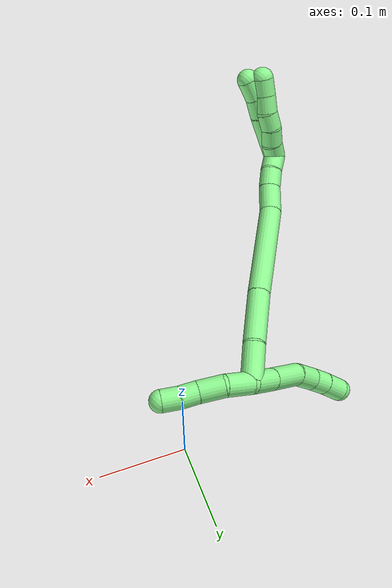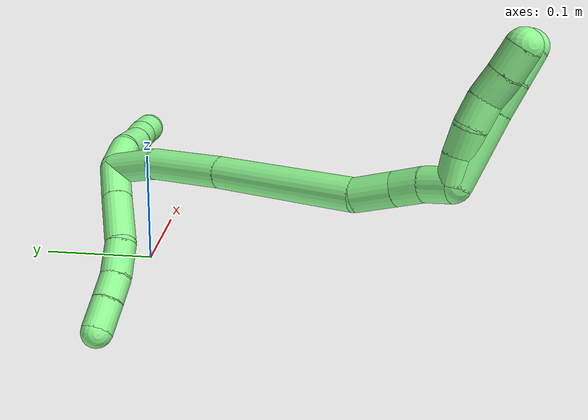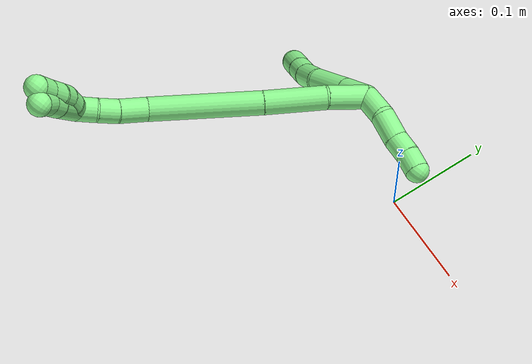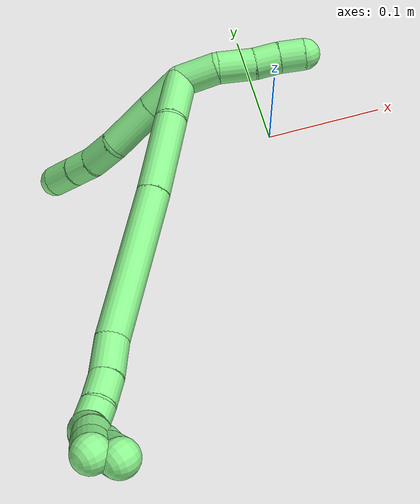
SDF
<sdf version="1.7">
 <world name="default">
  <model name="photoneo_s_sensor">
   <static>1</static>
   <pose>0 0 2 1.57079 1.57079 3.14159</pose>
   <link name="link">
    <inertial><mass>0.1</mass></inertial>
    <sensor name="sensor" type="depth">
     <update_rate>30</update_rate>
     <camera>
      <horizontal_fov>1.22</horizontal_fov>
      <image><width>1920</width><height>1200</height><format>B8G8R8</format></image>
      <clip><near>0.1</near><far>4</far></clip>
      <depth_camera><output>points</output></depth_camera>
     </camera>
     <plugin name="camera_plugin" filename="libgazebo_ros_depth_camera.so">
      <baseline>0.2</baseline>
      <alwaysOn>1</alwaysOn>
      <updateRate>0.0</updateRate>
      <cameraName>camera_ir</cameraName>
      <imageTopicName>/camera/color/image_raw</imageTopicName>
      <cameraInfoTopicName>/camera/color/camera_info</cameraInfoTopicName>
      <depthImageTopicName>/camera/depth/image_raw</depthImageTopicName>
      <depthImageCameraInfoTopicName>/camera/depth/camera_info</depthImageCameraInfoTopicName>
      <pointCloudTopicName>/camera/depth/points</pointCloudTopicName>
      <frameName>fr_optical</frameName>
      <pointCloudCutoff>0.1</pointCloudCutoff>
      <pointCloudCutoffMax>2.0</pointCloudCutoffMax>
      <distortionK1>0</distortionK1>
      <distortionK2>0</distortionK2>
      <distortionK3>0</distortionK3>
      <distortionT1>0</distortionT1>
      <distortionT2>0</distortionT2>
      <CxPrime>0</CxPrime>
      <Cx>0</Cx>
      <Cy>0</Cy>
      <focalLength>0</focalLength>
      <hackBaseline>0</hackBaseline>
     </plugin>
    </sensor>
   </link>
  </model>
  <model name="bin">
   <static>1</static>
   <link name="bottom">
    <collision name="collision-bottom">
     <pose>0 0 -0.01 0 -0 0</pose>
     <geometry><box><size>0.8 0.6 0.02</size></box></geometry>
     <surface>
      <friction><ode><mu>100</mu><mu2>100</mu2></ode></friction>
      <contact><collide_bitmask>65535</collide_bitmask></contact>
     </surface>
    </collision>
   </link>
   <link name="west_wall">
    <collision name="collision-west_wall">
     <pose>-0.41 0 0.1 0 -0 0</pose>
     <geometry><box><size>0.02 0.6 0.2</size></box></geometry>
     <surface>
      <friction><ode><mu>100</mu><mu2>100</mu2></ode></friction>
      <contact><collide_bitmask>65535</collide_bitmask></contact>
     </surface>
    </collision>
   </link>
   <link name="east_wall">
    <collision name="collision-east_wall">
     <pose>0.41 0 0.1 0 -0 0</pose>
     <geometry><box><size>0.02 0.6 0.2</size></box></geometry>
     <surface>
      <friction><ode><mu>100</mu><mu2>100</mu2></ode></friction>
      <contact><collide_bitmask>65535</collide_bitmask></contact>
     </surface>
    </collision>
   </link>
   <link name="south_wall">
    <collision name="collision-south_wall">
     <pose>0 -0.31 0.1 0 -0 0</pose>
     <geometry><box><size>0.8 0.02 0.2</size></box></geometry>
     <surface>
      <friction><ode><mu>100</mu><mu2>100</mu2></ode></friction>
      <contact><collide_bitmask>65535</collide_bitmask></contact>
     </surface>
    </collision>
   </link>
   <link name="north_wall">
    <collision name="collision-north_wall">
     <pose>0 0.31 0.1 0 -0 0</pose>
     <geometry><box><size>0.8 0.02 0.2</size></box></geometry>
     <surface>
      <friction><ode><mu>100</mu><mu2>100</mu2></ode></friction>
      <contact><collide_bitmask>65535</collide_bitmask></contact>
     </surface>
    </collision>
   </link>
  </model>
  <model name="13">
   <static>0</static>
   <link name="13">
    <collision name="collision-cylinder-e_1_2_8">
     <pose>-0.010805 0.007262 0.009507 -0.652314 -0.734559 0.258809</pose>
     <geometry><cylinder><radius>0.0125</radius><length>0.032241</length></cylinder></geometry>
     <surface>
      <friction><ode><mu>1.16</mu><mu2>1.16</mu2><slip1>0</slip1><slip2>0</slip2></ode></friction>
      <contact><ode><kp>1e+06</kp><kd>1</kd><max_vel>0</max_vel><min_depth>0.001</min_depth></ode></contact>
     </surface>
    </collision>
    <visual name="visual-cylinder-e_1_2_8">
     <pose>-0.010805 0.007262 0.009507 -0.652314 -0.734559 0.258809</pose>
     <geometry><cylinder><radius>0.0125</radius><length>0.032241</length></cylinder></geometry>
     <material><ambient>0.564706 0.984314 0.572549 1</ambient></material>
    </visual>
    <collision name="collision-cylinder-e_2_8_9">
     <pose>-0.036164 0.023961 0.032081 -0.625496 -0.734469 0.247512</pose>
     <geometry><cylinder><radius>0.0125</radius><length>0.043435</length></cylinder></geometry>
     <surface>
      <friction><ode><mu>1.16</mu><mu2>1.16</mu2><slip1>0</slip1><slip2>0</slip2></ode></friction>
      <contact><ode><kp>1e+06</kp><kd>1</kd><max_vel>0</max_vel><min_depth>0.001</min_depth></ode></contact>
     </surface>
    </collision>
    <visual name="visual-cylinder-e_2_8_9">
     <pose>-0.036164 0.023961 0.032081 -0.625496 -0.734469 0.247512</pose>
     <geometry><cylinder><radius>0.0125</radius><length>0.043435</length></cylinder></geometry>
     <material><ambient>0.564706 0.984314 0.572549 1</ambient></material>
    </visual>
    <collision name="collision-cylinder-e_3_9_10">
     <pose>-0.060214 0.042338 0.050449 -1.03548 -0.74026 0.435007</pose>
     <geometry><cylinder><radius>0.0125</radius><length>0.028153</length></cylinder></geometry>
     <surface>
      <friction><ode><mu>1.16</mu><mu2>1.16</mu2><slip1>0</slip1><slip2>0</slip2></ode></friction>
      <contact><ode><kp>1e+06</kp><kd>1</kd><max_vel>0</max_vel><min_depth>0.001</min_depth></ode></contact>
     </surface>
    </collision>
    <visual name="visual-cylinder-e_3_9_10">
     <pose>-0.060214 0.042338 0.050449 -1.03548 -0.74026 0.435007</pose>
     <geometry><cylinder><radius>0.0125</radius><length>0.028153</length></cylinder></geometry>
     <material><ambient>0.564706 0.984314 0.572549 1</ambient></material>
    </visual>
    <collision name="collision-cylinder-e_4_10_11">
     <pose>-0.075389 0.059081 0.059654 -1.10695 -0.577092 0.362786</pose>
     <geometry><cylinder><radius>0.0125</radius><length>0.020825</length></cylinder></geometry>
     <surface>
      <friction><ode><mu>1.16</mu><mu2>1.16</mu2><slip1>0</slip1><slip2>0</slip2></ode></friction>
      <contact><ode><kp>1e+06</kp><kd>1</kd><max_vel>0</max_vel><min_depth>0.001</min_depth></ode></contact>
     </surface>
    </collision>
    <visual name="visual-cylinder-e_4_10_11">
     <pose>-0.075389 0.059081 0.059654 -1.10695 -0.577092 0.362786</pose>
     <geometry><cylinder><radius>0.0125</radius><length>0.020825</length></cylinder></geometry>
     <material><ambient>0.564706 0.984314 0.572549 1</ambient></material>
    </visual>
    <collision name="collision-cylinder-e_5_11_6">
     <pose>-0.088134 0.076596 0.067609 -1.17561 -0.591245 0.400448</pose>
     <geometry><cylinder><radius>0.0125</radius><length>0.025346</length></cylinder></geometry>
     <surface>
      <friction><ode><mu>1.16</mu><mu2>1.16</mu2><slip1>0</slip1><slip2>0</slip2></ode></friction>
      <contact><ode><kp>1e+06</kp><kd>1</kd><max_vel>0</max_vel><min_depth>0.001</min_depth></ode></contact>
     </surface>
    </collision>
    <visual name="visual-cylinder-e_5_11_6">
     <pose>-0.088134 0.076596 0.067609 -1.17561 -0.591245 0.400448</pose>
     <geometry><cylinder><radius>0.0125</radius><length>0.025346</length></cylinder></geometry>
     <material><ambient>0.564706 0.984314 0.572549 1</ambient></material>
    </visual>
    <collision name="collision-cylinder-e_1_2_12">
     <pose>0.004618 -0.009606 -0.011044 2.42572 0.30559 0.781106</pose>
     <geometry><cylinder><radius>0.0125</radius><length>0.030697</length></cylinder></geometry>
     <surface>
      <friction><ode><mu>1.16</mu><mu2>1.16</mu2><slip1>0</slip1><slip2>0</slip2></ode></friction>
      <contact><ode><kp>1e+06</kp><kd>1</kd><max_vel>0</max_vel><min_depth>0.001</min_depth></ode></contact>
     </surface>
    </collision>
    <visual name="visual-cylinder-e_1_2_12">
     <pose>0.004618 -0.009606 -0.011044 2.42572 0.30559 0.781106</pose>
     <geometry><cylinder><radius>0.0125</radius><length>0.030697</length></cylinder></geometry>
     <material><ambient>0.564706 0.984314 0.572549 1</ambient></material>
    </visual>
    <collision name="collision-cylinder-e_2_12_13">
     <pose>0.009104 -0.027408 -0.0341 2.54281 -0.009037 -0.029276</pose>
     <geometry><cylinder><radius>0.0125</radius><length>0.029083</length></cylinder></geometry>
     <surface>
      <friction><ode><mu>1.16</mu><mu2>1.16</mu2><slip1>0</slip1><slip2>0</slip2></ode></friction>
      <contact><ode><kp>1e+06</kp><kd>1</kd><max_vel>0</max_vel><min_depth>0.001</min_depth></ode></contact>
     </surface>
    </collision>
    <visual name="visual-cylinder-e_2_12_13">
     <pose>0.009104 -0.027408 -0.0341 2.54281 -0.009037 -0.029276</pose>
     <geometry><cylinder><radius>0.0125</radius><length>0.029083</length></cylinder></geometry>
     <material><ambient>0.564706 0.984314 0.572549 1</ambient></material>
    </visual>
    <collision name="collision-cylinder-e_3_13_14">
     <pose>0.010211 -0.040762 -0.054643 2.59785 0.123624 0.436931</pose>
     <geometry><cylinder><radius>0.0125</radius><length>0.020094</length></cylinder></geometry>
     <surface>
      <friction><ode><mu>1.16</mu><mu2>1.16</mu2><slip1>0</slip1><slip2>0</slip2></ode></friction>
      <contact><ode><kp>1e+06</kp><kd>1</kd><max_vel>0</max_vel><min_depth>0.001</min_depth></ode></contact>
     </surface>
    </collision>
    <visual name="visual-cylinder-e_3_13_14">
     <pose>0.010211 -0.040762 -0.054643 2.59785 0.123624 0.436931</pose>
     <geometry><cylinder><radius>0.0125</radius><length>0.020094</length></cylinder></geometry>
     <material><ambient>0.564706 0.984314 0.572549 1</ambient></material>
    </visual>
    <collision name="collision-cylinder-e_4_14_5">
     <pose>0.011959 -0.051997 -0.071181 2.4923 0.050556 0.149966</pose>
     <geometry><cylinder><radius>0.0125</radius><length>0.020126</length></cylinder></geometry>
     <surface>
      <friction><ode><mu>1.16</mu><mu2>1.16</mu2><slip1>0</slip1><slip2>0</slip2></ode></friction>
      <contact><ode><kp>1e+06</kp><kd>1</kd><max_vel>0</max_vel><min_depth>0.001</min_depth></ode></contact>
     </surface>
    </collision>
    <visual name="visual-cylinder-e_4_14_5">
     <pose>0.011959 -0.051997 -0.071181 2.4923 0.050556 0.149966</pose>
     <geometry><cylinder><radius>0.0125</radius><length>0.020126</length></cylinder></geometry>
     <material><ambient>0.564706 0.984314 0.572549 1</ambient></material>
    </visual>
    <collision name="collision-cylinder-e_1_2_15">
     <pose>-0.005922 -0.012451 0.016781 0.638352 -0.276162 -0.091785</pose>
     <geometry><cylinder><radius>0.0125</radius><length>0.043437</length></cylinder></geometry>
     <surface>
      <friction><ode><mu>1.16</mu><mu2>1.16</mu2><slip1>0</slip1><slip2>0</slip2></ode></friction>
      <contact><ode><kp>1e+06</kp><kd>1</kd><max_vel>0</max_vel><min_depth>0.001</min_depth></ode></contact>
     </surface>
    </collision>
    <visual name="visual-cylinder-e_1_2_15">
     <pose>-0.005922 -0.012451 0.016781 0.638352 -0.276162 -0.091785</pose>
     <geometry><cylinder><radius>0.0125</radius><length>0.043437</length></cylinder></geometry>
     <material><ambient>0.564706 0.984314 0.572549 1</ambient></material>
    </visual>
    <collision name="collision-cylinder-e_2_15_16">
     <pose>-0.026278 -0.040791 0.057618 0.58373 -0.464182 -0.141783</pose>
     <geometry><cylinder><radius>0.0125</radius><length>0.064482</length></cylinder></geometry>
     <surface>
      <friction><ode><mu>1.16</mu><mu2>1.16</mu2><slip1>0</slip1><slip2>0</slip2></ode></friction>
      <contact><ode><kp>1e+06</kp><kd>1</kd><max_vel>0</max_vel><min_depth>0.001</min_depth></ode></contact>
     </surface>
    </collision>
    <visual name="visual-cylinder-e_2_15_16">
     <pose>-0.026278 -0.040791 0.057618 0.58373 -0.464182 -0.141783</pose>
     <geometry><cylinder><radius>0.0125</radius><length>0.064482</length></cylinder></geometry>
     <material><ambient>0.564706 0.984314 0.572549 1</ambient></material>
    </visual>
    <collision name="collision-cylinder-e_3_16_17">
     <pose>-0.067587 -0.083508 0.126548 0.538818 -0.474814 -0.133428</pose>
     <geometry><cylinder><radius>0.0125</radius><length>0.117571</length></cylinder></geometry>
     <surface>
      <friction><ode><mu>1.16</mu><mu2>1.16</mu2><slip1>0</slip1><slip2>0</slip2></ode></friction>
      <contact><ode><kp>1e+06</kp><kd>1</kd><max_vel>0</max_vel><min_depth>0.001</min_depth></ode></contact>
     </surface>
    </collision>
    <visual name="visual-cylinder-e_3_16_17">
     <pose>-0.067587 -0.083508 0.126548 0.538818 -0.474814 -0.133428</pose>
     <geometry><cylinder><radius>0.0125</radius><length>0.117571</length></cylinder></geometry>
     <material><ambient>0.564706 0.984314 0.572549 1</ambient></material>
    </visual>
    <collision name="collision-cylinder-e_4_17_18">
     <pose>-0.098129 -0.120378 0.182579 0.732959 -0.239581 -0.092332</pose>
     <geometry><cylinder><radius>0.0125</radius><length>0.030903</length></cylinder></geometry>
     <surface>
      <friction><ode><mu>1.16</mu><mu2>1.16</mu2><slip1>0</slip1><slip2>0</slip2></ode></friction>
      <contact><ode><kp>1e+06</kp><kd>1</kd><max_vel>0</max_vel><min_depth>0.001</min_depth></ode></contact>
     </surface>
    </collision>
    <visual name="visual-cylinder-e_4_17_18">
     <pose>-0.098129 -0.120378 0.182579 0.732959 -0.239581 -0.092332</pose>
     <geometry><cylinder><radius>0.0125</radius><length>0.030903</length></cylinder></geometry>
     <material><ambient>0.564706 0.984314 0.572549 1</ambient></material>
    </visual>
    <collision name="collision-cylinder-e_5_18_19">
     <pose>-0.103896 -0.13659 0.202428 0.617123 -0.194554 -0.062189</pose>
     <geometry><cylinder><radius>0.0125</radius><length>0.02173</length></cylinder></geometry>
     <surface>
      <friction><ode><mu>1.16</mu><mu2>1.16</mu2><slip1>0</slip1><slip2>0</slip2></ode></friction>
      <contact><ode><kp>1e+06</kp><kd>1</kd><max_vel>0</max_vel><min_depth>0.001</min_depth></ode></contact>
     </surface>
    </collision>
    <visual name="visual-cylinder-e_5_18_19">
     <pose>-0.103896 -0.13659 0.202428 0.617123 -0.194554 -0.062189</pose>
     <geometry><cylinder><radius>0.0125</radius><length>0.02173</length></cylinder></geometry>
     <material><ambient>0.564706 0.984314 0.572549 1</ambient></material>
    </visual>
    <collision name="collision-cylinder-e_6_19_1">
     <pose>-0.109474 -0.147658 0.220262 0.492012 -0.323551 -0.081911</pose>
     <geometry><cylinder><radius>0.0125</radius><length>0.021876</length></cylinder></geometry>
     <surface>
      <friction><ode><mu>1.16</mu><mu2>1.16</mu2><slip1>0</slip1><slip2>0</slip2></ode></friction>
      <contact><ode><kp>1e+06</kp><kd>1</kd><max_vel>0</max_vel><min_depth>0.001</min_depth></ode></contact>
     </surface>
    </collision>
    <visual name="visual-cylinder-e_6_19_1">
     <pose>-0.109474 -0.147658 0.220262 0.492012 -0.323551 -0.081911</pose>
     <geometry><cylinder><radius>0.0125</radius><length>0.021876</length></cylinder></geometry>
     <material><ambient>0.564706 0.984314 0.572549 1</ambient></material>
    </visual>
    <collision name="collision-cylinder-e_1_1_20">
     <pose>-0.105402 -0.158583 0.231991 1.16516 0.855589 0.583667</pose>
     <geometry><cylinder><radius>0.0125</radius><length>0.02</length></cylinder></geometry>
     <surface>
      <friction><ode><mu>1.16</mu><mu2>1.16</mu2><slip1>0</slip1><slip2>0</slip2></ode></friction>
      <contact><ode><kp>1e+06</kp><kd>1</kd><max_vel>0</max_vel><min_depth>0.001</min_depth></ode></contact>
     </surface>
    </collision>
    <visual name="visual-cylinder-e_1_1_20">
     <pose>-0.105402 -0.158583 0.231991 1.16516 0.855589 0.583667</pose>
     <geometry><cylinder><radius>0.0125</radius><length>0.02</length></cylinder></geometry>
     <material><ambient>0.564706 0.984314 0.572549 1</ambient></material>
    </visual>
    <collision name="collision-cylinder-e_2_20_21">
     <pose>-0.090974 -0.170397 0.238957 0.923144 0.758535 0.391422</pose>
     <geometry><cylinder><radius>0.0125</radius><length>0.02</length></cylinder></geometry>
     <surface>
      <friction><ode><mu>1.16</mu><mu2>1.16</mu2><slip1>0</slip1><slip2>0</slip2></ode></friction>
      <contact><ode><kp>1e+06</kp><kd>1</kd><max_vel>0</max_vel><min_depth>0.001</min_depth></ode></contact>
     </surface>
    </collision>
    <visual name="visual-cylinder-e_2_20_21">
     <pose>-0.090974 -0.170397 0.238957 0.923144 0.758535 0.391422</pose>
     <geometry><cylinder><radius>0.0125</radius><length>0.02</length></cylinder></geometry>
     <material><ambient>0.564706 0.984314 0.572549 1</ambient></material>
    </visual>
    <collision name="collision-cylinder-e_3_21_22">
     <pose>-0.078326 -0.183605 0.246752 1.13935 0.614945 0.401305</pose>
     <geometry><cylinder><radius>0.0125</radius><length>0.02</length></cylinder></geometry>
     <surface>
      <friction><ode><mu>1.16</mu><mu2>1.16</mu2><slip1>0</slip1><slip2>0</slip2></ode></friction>
      <contact><ode><kp>1e+06</kp><kd>1</kd><max_vel>0</max_vel><min_depth>0.001</min_depth></ode></contact>
     </surface>
    </collision>
    <visual name="visual-cylinder-e_3_21_22">
     <pose>-0.078326 -0.183605 0.246752 1.13935 0.614945 0.401305</pose>
     <geometry><cylinder><radius>0.0125</radius><length>0.02</length></cylinder></geometry>
     <material><ambient>0.564706 0.984314 0.572549 1</ambient></material>
    </visual>
    <collision name="collision-cylinder-e_4_22_23">
     <pose>-0.06806 -0.198141 0.255566 0.921873 0.466398 0.234828</pose>
     <geometry><cylinder><radius>0.0125</radius><length>0.02</length></cylinder></geometry>
     <surface>
      <friction><ode><mu>1.16</mu><mu2>1.16</mu2><slip1>0</slip1><slip2>0</slip2></ode></friction>
      <contact><ode><kp>1e+06</kp><kd>1</kd><max_vel>0</max_vel><min_depth>0.001</min_depth></ode></contact>
     </surface>
    </collision>
    <visual name="visual-cylinder-e_4_22_23">
     <pose>-0.06806 -0.198141 0.255566 0.921873 0.466398 0.234828</pose>
     <geometry><cylinder><radius>0.0125</radius><length>0.02</length></cylinder></geometry>
     <material><ambient>0.564706 0.984314 0.572549 1</ambient></material>
    </visual>
    <collision name="collision-cylinder-e_5_23_4">
     <pose>-0.058496 -0.212352 0.26586 0.966699 0.531427 0.283769</pose>
     <geometry><cylinder><radius>0.0125</radius><length>0.02</length></cylinder></geometry>
     <surface>
      <friction><ode><mu>1.16</mu><mu2>1.16</mu2><slip1>0</slip1><slip2>0</slip2></ode></friction>
      <contact><ode><kp>1e+06</kp><kd>1</kd><max_vel>0</max_vel><min_depth>0.001</min_depth></ode></contact>
     </surface>
    </collision>
    <visual name="visual-cylinder-e_5_23_4">
     <pose>-0.058496 -0.212352 0.26586 0.966699 0.531427 0.283769</pose>
     <geometry><cylinder><radius>0.0125</radius><length>0.02</length></cylinder></geometry>
     <material><ambient>0.564706 0.984314 0.572549 1</ambient></material>
    </visual>
    <collision name="collision-cylinder-e_1_1_24">
     <pose>-0.097527 -0.173477 0.237458 1.20323 0.602688 0.420443</pose>
     <geometry><cylinder><radius>0.0125</radius><length>0.054423</length></cylinder></geometry>
     <surface>
      <friction><ode><mu>1.16</mu><mu2>1.16</mu2><slip1>0</slip1><slip2>0</slip2></ode></friction>
      <contact><ode><kp>1e+06</kp><kd>1</kd><max_vel>0</max_vel><min_depth>0.001</min_depth></ode></contact>
     </surface>
    </collision>
    <visual name="visual-cylinder-e_1_1_24">
     <pose>-0.097527 -0.173477 0.237458 1.20323 0.602688 0.420443</pose>
     <geometry><cylinder><radius>0.0125</radius><length>0.054423</length></cylinder></geometry>
     <material><ambient>0.564706 0.984314 0.572549 1</ambient></material>
    </visual>
    <collision name="collision-cylinder-e_2_24_25">
     <pose>-0.075984 -0.202819 0.249596 1.1195 0.578922 0.368994</pose>
     <geometry><cylinder><radius>0.0125</radius><length>0.022363</length></cylinder></geometry>
     <surface>
      <friction><ode><mu>1.16</mu><mu2>1.16</mu2><slip1>0</slip1><slip2>0</slip2></ode></friction>
      <contact><ode><kp>1e+06</kp><kd>1</kd><max_vel>0</max_vel><min_depth>0.001</min_depth></ode></contact>
     </surface>
    </collision>
    <visual name="visual-cylinder-e_2_24_25">
     <pose>-0.075984 -0.202819 0.249596 1.1195 0.578922 0.368994</pose>
     <geometry><cylinder><radius>0.0125</radius><length>0.022363</length></cylinder></geometry>
     <material><ambient>0.564706 0.984314 0.572549 1</ambient></material>
    </visual>
    <collision name="collision-cylinder-e_3_25_3">
     <pose>-0.063893 -0.220838 0.256315 1.30262 0.540589 0.416294</pose>
     <geometry><cylinder><radius>0.0125</radius><length>0.023214</length></cylinder></geometry>
     <surface>
      <friction><ode><mu>1.16</mu><mu2>1.16</mu2><slip1>0</slip1><slip2>0</slip2></ode></friction>
      <contact><ode><kp>1e+06</kp><kd>1</kd><max_vel>0</max_vel><min_depth>0.001</min_depth></ode></contact>
     </surface>
    </collision>
    <visual name="visual-cylinder-e_3_25_3">
     <pose>-0.063893 -0.220838 0.256315 1.30262 0.540589 0.416294</pose>
     <geometry><cylinder><radius>0.0125</radius><length>0.023214</length></cylinder></geometry>
     <material><ambient>0.564706 0.984314 0.572549 1</ambient></material>
    </visual>
    <collision name="collision-sphere-3">
     <pose>-0.057919 -0.230434 0.258952 0 -0 0</pose>
     <geometry><sphere><radius>0.0125</radius></sphere></geometry>
     <surface>
      <friction><ode><mu>1.16</mu><mu2>1.16</mu2><slip1>0</slip1><slip2>0</slip2></ode></friction>
      <contact><ode><kp>1e+06</kp><kd>1</kd><max_vel>0</max_vel><min_depth>0.001</min_depth></ode></contact>
     </surface>
    </collision>
    <visual name="visual-sphere-3">
     <pose>-0.057919 -0.230434 0.258952 0 -0 0</pose>
     <geometry><sphere><radius>0.0125</radius></sphere></geometry>
     <material><ambient>0.564706 0.984314 0.572549 1</ambient></material>
    </visual>
    <collision name="collision-sphere-25">
     <pose>-0.069866 -0.211242 0.253678 0 -0 0</pose>
     <geometry><sphere><radius>0.0125</radius></sphere></geometry>
     <surface>
      <friction><ode><mu>1.16</mu><mu2>1.16</mu2><slip1>0</slip1><slip2>0</slip2></ode></friction>
      <contact><ode><kp>1e+06</kp><kd>1</kd><max_vel>0</max_vel><min_depth>0.001</min_depth></ode></contact>
     </surface>
    </collision>
    <visual name="visual-sphere-25">
     <pose>-0.069866 -0.211242 0.253678 0 -0 0</pose>
     <geometry><sphere><radius>0.0125</radius></sphere></geometry>
     <material><ambient>0.564706 0.984314 0.572549 1</ambient></material>
    </visual>
    <collision name="collision-sphere-24">
     <pose>-0.082101 -0.194397 0.245514 0 -0 0</pose>
     <geometry><sphere><radius>0.0125</radius></sphere></geometry>
     <surface>
      <friction><ode><mu>1.16</mu><mu2>1.16</mu2><slip1>0</slip1><slip2>0</slip2></ode></friction>
      <contact><ode><kp>1e+06</kp><kd>1</kd><max_vel>0</max_vel><min_depth>0.001</min_depth></ode></contact>
     </surface>
    </collision>
    <visual name="visual-sphere-24">
     <pose>-0.082101 -0.194397 0.245514 0 -0 0</pose>
     <geometry><sphere><radius>0.0125</radius></sphere></geometry>
     <material><ambient>0.564706 0.984314 0.572549 1</ambient></material>
    </visual>
    <collision name="collision-sphere-4">
     <pose>-0.053428 -0.219448 0.270757 0 -0 0</pose>
     <geometry><sphere><radius>0.0125</radius></sphere></geometry>
     <surface>
      <friction><ode><mu>1.16</mu><mu2>1.16</mu2><slip1>0</slip1><slip2>0</slip2></ode></friction>
      <contact><ode><kp>1e+06</kp><kd>1</kd><max_vel>0</max_vel><min_depth>0.001</min_depth></ode></contact>
     </surface>
    </collision>
    <visual name="visual-sphere-4">
     <pose>-0.053428 -0.219448 0.270757 0 -0 0</pose>
     <geometry><sphere><radius>0.0125</radius></sphere></geometry>
     <material><ambient>0.564706 0.984314 0.572549 1</ambient></material>
    </visual>
    <collision name="collision-sphere-23">
     <pose>-0.063564 -0.205257 0.260964 0 -0 0</pose>
     <geometry><sphere><radius>0.0125</radius></sphere></geometry>
     <surface>
      <friction><ode><mu>1.16</mu><mu2>1.16</mu2><slip1>0</slip1><slip2>0</slip2></ode></friction>
      <contact><ode><kp>1e+06</kp><kd>1</kd><max_vel>0</max_vel><min_depth>0.001</min_depth></ode></contact>
     </surface>
    </collision>
    <visual name="visual-sphere-23">
     <pose>-0.063564 -0.205257 0.260964 0 -0 0</pose>
     <geometry><sphere><radius>0.0125</radius></sphere></geometry>
     <material><ambient>0.564706 0.984314 0.572549 1</ambient></material>
    </visual>
    <collision name="collision-sphere-22">
     <pose>-0.072557 -0.191025 0.250168 0 -0 0</pose>
     <geometry><sphere><radius>0.0125</radius></sphere></geometry>
     <surface>
      <friction><ode><mu>1.16</mu><mu2>1.16</mu2><slip1>0</slip1><slip2>0</slip2></ode></friction>
      <contact><ode><kp>1e+06</kp><kd>1</kd><max_vel>0</max_vel><min_depth>0.001</min_depth></ode></contact>
     </surface>
    </collision>
    <visual name="visual-sphere-22">
     <pose>-0.072557 -0.191025 0.250168 0 -0 0</pose>
     <geometry><sphere><radius>0.0125</radius></sphere></geometry>
     <material><ambient>0.564706 0.984314 0.572549 1</ambient></material>
    </visual>
    <collision name="collision-sphere-21">
     <pose>-0.084095 -0.176186 0.243336 0 -0 0</pose>
     <geometry><sphere><radius>0.0125</radius></sphere></geometry>
     <surface>
      <friction><ode><mu>1.16</mu><mu2>1.16</mu2><slip1>0</slip1><slip2>0</slip2></ode></friction>
      <contact><ode><kp>1e+06</kp><kd>1</kd><max_vel>0</max_vel><min_depth>0.001</min_depth></ode></contact>
     </surface>
    </collision>
    <visual name="visual-sphere-21">
     <pose>-0.084095 -0.176186 0.243336 0 -0 0</pose>
     <geometry><sphere><radius>0.0125</radius></sphere></geometry>
     <material><ambient>0.564706 0.984314 0.572549 1</ambient></material>
    </visual>
    <collision name="collision-sphere-20">
     <pose>-0.097853 -0.164608 0.234578 0 -0 0</pose>
     <geometry><sphere><radius>0.0125</radius></sphere></geometry>
     <surface>
      <friction><ode><mu>1.16</mu><mu2>1.16</mu2><slip1>0</slip1><slip2>0</slip2></ode></friction>
      <contact><ode><kp>1e+06</kp><kd>1</kd><max_vel>0</max_vel><min_depth>0.001</min_depth></ode></contact>
     </surface>
    </collision>
    <visual name="visual-sphere-20">
     <pose>-0.097853 -0.164608 0.234578 0 -0 0</pose>
     <geometry><sphere><radius>0.0125</radius></sphere></geometry>
     <material><ambient>0.564706 0.984314 0.572549 1</ambient></material>
    </visual>
    <collision name="collision-sphere-6">
     <pose>-0.095198 0.086306 0.07166 0 -0 0</pose>
     <geometry><sphere><radius>0.0125</radius></sphere></geometry>
     <surface>
      <friction><ode><mu>1.16</mu><mu2>1.16</mu2><slip1>0</slip1><slip2>0</slip2></ode></friction>
      <contact><ode><kp>1e+06</kp><kd>1</kd><max_vel>0</max_vel><min_depth>0.001</min_depth></ode></contact>
     </surface>
    </collision>
    <visual name="visual-sphere-6">
     <pose>-0.095198 0.086306 0.07166 0 -0 0</pose>
     <geometry><sphere><radius>0.0125</radius></sphere></geometry>
     <material><ambient>0.564706 0.984314 0.572549 1</ambient></material>
    </visual>
    <collision name="collision-sphere-11">
     <pose>-0.08107 0.066885 0.063558 0 -0 0</pose>
     <geometry><sphere><radius>0.0125</radius></sphere></geometry>
     <surface>
      <friction><ode><mu>1.16</mu><mu2>1.16</mu2><slip1>0</slip1><slip2>0</slip2></ode></friction>
      <contact><ode><kp>1e+06</kp><kd>1</kd><max_vel>0</max_vel><min_depth>0.001</min_depth></ode></contact>
     </surface>
    </collision>
    <visual name="visual-sphere-11">
     <pose>-0.08107 0.066885 0.063558 0 -0 0</pose>
     <geometry><sphere><radius>0.0125</radius></sphere></geometry>
     <material><ambient>0.564706 0.984314 0.572549 1</ambient></material>
    </visual>
    <collision name="collision-sphere-10">
     <pose>-0.069708 0.051276 0.05575 0 -0 0</pose>
     <geometry><sphere><radius>0.0125</radius></sphere></geometry>
     <surface>
      <friction><ode><mu>1.16</mu><mu2>1.16</mu2><slip1>0</slip1><slip2>0</slip2></ode></friction>
      <contact><ode><kp>1e+06</kp><kd>1</kd><max_vel>0</max_vel><min_depth>0.001</min_depth></ode></contact>
     </surface>
    </collision>
    <visual name="visual-sphere-10">
     <pose>-0.069708 0.051276 0.05575 0 -0 0</pose>
     <geometry><sphere><radius>0.0125</radius></sphere></geometry>
     <material><ambient>0.564706 0.984314 0.572549 1</ambient></material>
    </visual>
    <collision name="collision-sphere-9">
     <pose>-0.050719 0.033399 0.045148 0 -0 0</pose>
     <geometry><sphere><radius>0.0125</radius></sphere></geometry>
     <surface>
      <friction><ode><mu>1.16</mu><mu2>1.16</mu2><slip1>0</slip1><slip2>0</slip2></ode></friction>
      <contact><ode><kp>1e+06</kp><kd>1</kd><max_vel>0</max_vel><min_depth>0.001</min_depth></ode></contact>
     </surface>
    </collision>
    <visual name="visual-sphere-9">
     <pose>-0.050719 0.033399 0.045148 0 -0 0</pose>
     <geometry><sphere><radius>0.0125</radius></sphere></geometry>
     <material><ambient>0.564706 0.984314 0.572549 1</ambient></material>
    </visual>
    <collision name="collision-sphere-2">
     <geometry><sphere><radius>0.0125</radius></sphere></geometry>
     <surface>
      <friction><ode><mu>1.16</mu><mu2>1.16</mu2><slip1>0</slip1><slip2>0</slip2></ode></friction>
      <contact><ode><kp>1e+06</kp><kd>1</kd><max_vel>0</max_vel><min_depth>0.001</min_depth></ode></contact>
     </surface>
    </collision>
    <visual name="visual-sphere-2">
     <geometry><sphere><radius>0.0125</radius></sphere></geometry>
     <material><ambient>0.564706 0.984314 0.572549 1</ambient></material>
    </visual>
    <collision name="collision-sphere-19">
     <pose>-0.105997 -0.142759 0.211122 0 -0 0</pose>
     <geometry><sphere><radius>0.0125</radius></sphere></geometry>
     <surface>
      <friction><ode><mu>1.16</mu><mu2>1.16</mu2><slip1>0</slip1><slip2>0</slip2></ode></friction>
      <contact><ode><kp>1e+06</kp><kd>1</kd><max_vel>0</max_vel><min_depth>0.001</min_depth></ode></contact>
     </surface>
    </collision>
    <visual name="visual-sphere-19">
     <pose>-0.105997 -0.142759 0.211122 0 -0 0</pose>
     <geometry><sphere><radius>0.0125</radius></sphere></geometry>
     <material><ambient>0.564706 0.984314 0.572549 1</ambient></material>
    </visual>
    <collision name="collision-sphere-8">
     <pose>-0.02161 0.014524 0.019014 0 -0 0</pose>
     <geometry><sphere><radius>0.0125</radius></sphere></geometry>
     <surface>
      <friction><ode><mu>1.16</mu><mu2>1.16</mu2><slip1>0</slip1><slip2>0</slip2></ode></friction>
      <contact><ode><kp>1e+06</kp><kd>1</kd><max_vel>0</max_vel><min_depth>0.001</min_depth></ode></contact>
     </surface>
    </collision>
    <visual name="visual-sphere-8">
     <pose>-0.02161 0.014524 0.019014 0 -0 0</pose>
     <geometry><sphere><radius>0.0125</radius></sphere></geometry>
     <material><ambient>0.564706 0.984314 0.572549 1</ambient></material>
    </visual>
    <collision name="collision-sphere-12">
     <pose>0.009235 -0.019212 -0.022089 0 -0 0</pose>
     <geometry><sphere><radius>0.0125</radius></sphere></geometry>
     <surface>
      <friction><ode><mu>1.16</mu><mu2>1.16</mu2><slip1>0</slip1><slip2>0</slip2></ode></friction>
      <contact><ode><kp>1e+06</kp><kd>1</kd><max_vel>0</max_vel><min_depth>0.001</min_depth></ode></contact>
     </surface>
    </collision>
    <visual name="visual-sphere-12">
     <pose>0.009235 -0.019212 -0.022089 0 -0 0</pose>
     <geometry><sphere><radius>0.0125</radius></sphere></geometry>
     <material><ambient>0.564706 0.984314 0.572549 1</ambient></material>
    </visual>
    <collision name="collision-sphere-13">
     <pose>0.008973 -0.035604 -0.046111 0 -0 0</pose>
     <geometry><sphere><radius>0.0125</radius></sphere></geometry>
     <surface>
      <friction><ode><mu>1.16</mu><mu2>1.16</mu2><slip1>0</slip1><slip2>0</slip2></ode></friction>
      <contact><ode><kp>1e+06</kp><kd>1</kd><max_vel>0</max_vel><min_depth>0.001</min_depth></ode></contact>
     </surface>
    </collision>
    <visual name="visual-sphere-13">
     <pose>0.008973 -0.035604 -0.046111 0 -0 0</pose>
     <geometry><sphere><radius>0.0125</radius></sphere></geometry>
     <material><ambient>0.564706 0.984314 0.572549 1</ambient></material>
    </visual>
    <collision name="collision-sphere-14">
     <pose>0.01145 -0.04592 -0.063175 0 -0 0</pose>
     <geometry><sphere><radius>0.0125</radius></sphere></geometry>
     <surface>
      <friction><ode><mu>1.16</mu><mu2>1.16</mu2><slip1>0</slip1><slip2>0</slip2></ode></friction>
      <contact><ode><kp>1e+06</kp><kd>1</kd><max_vel>0</max_vel><min_depth>0.001</min_depth></ode></contact>
     </surface>
    </collision>
    <visual name="visual-sphere-14">
     <pose>0.01145 -0.04592 -0.063175 0 -0 0</pose>
     <geometry><sphere><radius>0.0125</radius></sphere></geometry>
     <material><ambient>0.564706 0.984314 0.572549 1</ambient></material>
    </visual>
    <collision name="collision-sphere-5">
     <pose>0.012467 -0.058073 -0.079186 0 -0 0</pose>
     <geometry><sphere><radius>0.0125</radius></sphere></geometry>
     <surface>
      <friction><ode><mu>1.16</mu><mu2>1.16</mu2><slip1>0</slip1><slip2>0</slip2></ode></friction>
      <contact><ode><kp>1e+06</kp><kd>1</kd><max_vel>0</max_vel><min_depth>0.001</min_depth></ode></contact>
     </surface>
    </collision>
    <visual name="visual-sphere-5">
     <pose>0.012467 -0.058073 -0.079186 0 -0 0</pose>
     <geometry><sphere><radius>0.0125</radius></sphere></geometry>
     <material><ambient>0.564706 0.984314 0.572549 1</ambient></material>
    </visual>
    <collision name="collision-sphere-15">
     <pose>-0.011844 -0.024902 0.033562 0 -0 0</pose>
     <geometry><sphere><radius>0.0125</radius></sphere></geometry>
     <surface>
      <friction><ode><mu>1.16</mu><mu2>1.16</mu2><slip1>0</slip1><slip2>0</slip2></ode></friction>
      <contact><ode><kp>1e+06</kp><kd>1</kd><max_vel>0</max_vel><min_depth>0.001</min_depth></ode></contact>
     </surface>
    </collision>
    <visual name="visual-sphere-15">
     <pose>-0.011844 -0.024902 0.033562 0 -0 0</pose>
     <geometry><sphere><radius>0.0125</radius></sphere></geometry>
     <material><ambient>0.564706 0.984314 0.572549 1</ambient></material>
    </visual>
    <collision name="collision-sphere-16">
     <pose>-0.040712 -0.056681 0.081673 0 -0 0</pose>
     <geometry><sphere><radius>0.0125</radius></sphere></geometry>
     <surface>
      <friction><ode><mu>1.16</mu><mu2>1.16</mu2><slip1>0</slip1><slip2>0</slip2></ode></friction>
      <contact><ode><kp>1e+06</kp><kd>1</kd><max_vel>0</max_vel><min_depth>0.001</min_depth></ode></contact>
     </surface>
    </collision>
    <visual name="visual-sphere-16">
     <pose>-0.040712 -0.056681 0.081673 0 -0 0</pose>
     <geometry><sphere><radius>0.0125</radius></sphere></geometry>
     <material><ambient>0.564706 0.984314 0.572549 1</ambient></material>
    </visual>
    <collision name="collision-sphere-17">
     <pose>-0.094462 -0.110335 0.171423 0 -0 0</pose>
     <geometry><sphere><radius>0.0125</radius></sphere></geometry>
     <surface>
      <friction><ode><mu>1.16</mu><mu2>1.16</mu2><slip1>0</slip1><slip2>0</slip2></ode></friction>
      <contact><ode><kp>1e+06</kp><kd>1</kd><max_vel>0</max_vel><min_depth>0.001</min_depth></ode></contact>
     </surface>
    </collision>
    <visual name="visual-sphere-17">
     <pose>-0.094462 -0.110335 0.171423 0 -0 0</pose>
     <geometry><sphere><radius>0.0125</radius></sphere></geometry>
     <material><ambient>0.564706 0.984314 0.572549 1</ambient></material>
    </visual>
    <collision name="collision-sphere-18">
     <pose>-0.101796 -0.130421 0.193734 0 -0 0</pose>
     <geometry><sphere><radius>0.0125</radius></sphere></geometry>
     <surface>
      <friction><ode><mu>1.16</mu><mu2>1.16</mu2><slip1>0</slip1><slip2>0</slip2></ode></friction>
      <contact><ode><kp>1e+06</kp><kd>1</kd><max_vel>0</max_vel><min_depth>0.001</min_depth></ode></contact>
     </surface>
    </collision>
    <visual name="visual-sphere-18">
     <pose>-0.101796 -0.130421 0.193734 0 -0 0</pose>
     <geometry><sphere><radius>0.0125</radius></sphere></geometry>
     <material><ambient>0.564706 0.984314 0.572549 1</ambient></material>
    </visual>
    <collision name="collision-sphere-1">
     <pose>-0.112952 -0.152557 0.229403 0 -0 0</pose>
     <geometry><sphere><radius>0.0125</radius></sphere></geometry>
     <surface>
      <friction><ode><mu>1.16</mu><mu2>1.16</mu2><slip1>0</slip1><slip2>0</slip2></ode></friction>
      <contact><ode><kp>1e+06</kp><kd>1</kd><max_vel>0</max_vel><min_depth>0.001</min_depth></ode></contact>
     </surface>
    </collision>
    <visual name="visual-sphere-1">
     <pose>-0.112952 -0.152557 0.229403 0 -0 0</pose>
     <geometry><sphere><radius>0.0125</radius></sphere></geometry>
     <material><ambient>0.564706 0.984314 0.572549 1</ambient></material>
    </visual>
    <inertial>
     <pose>-0.054219 -0.077055 0.114179 0 -0 0</pose>
     <mass>0.75</mass>
     <inertia>
      <ixx>0.000192</ixx>
      <ixy>0</ixy>
      <ixz>0</ixz>
      <iyy>0.000156</iyy>
      <iyz>0</iyz>
      <izz>0.000199</izz>
     </inertia>
    </inertial>
   </link>
   <pose>-0.07379 0.010632 0.11194 -0.880108 -1.0149 1.37788</pose>
  </model>
 </world>
</sdf>
